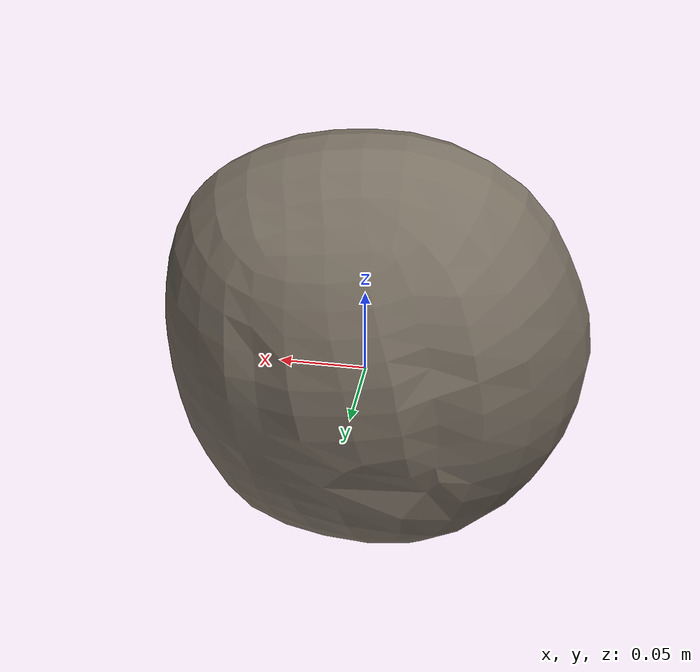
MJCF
<mujoco model="Bread_23">
  <compiler autolimits="true" boundmass="0.01" angle="radian"/>
  <default>
    <default class="/">
      <default class="__VISUAL_MJT__">
        <geom contype="0" conaffinity="0" group="0"/>
      </default>
      <default class="__STRUCTURAL_MJT__">
        <geom contype="8" conaffinity="15" group="4" friction="0.90000000000000002 0.90000000000000002 0.001" solref="0.025000000000000001 1" solimp="0.998 0.998 0.001"/>
      </default>
      <default class="__DYNAMIC_MJT__">
        <geom contype="1" conaffinity="15" group="4" friction="0.90000000000000002 0.90000000000000002 0.001" solref="0.025000000000000001 1" solimp="0.998 0.998 0.001"/>
      </default>
    </default>
  </default>
  <asset>
    <texture name="HoneyBread_Mat2" type="2d" file="HoneyBread_AlbedoTransparency.png"/>
    <material name="material_HoneyBread_Mat2" class="/" texture="HoneyBread_Mat2" specular="0.5" shininess="0.5" rgba="0.6323529 0.60631489999999999 0.56725780000000003 1"/>
    <mesh name="Bread_23_honeybread_b_mesh" class="/" file="Bread_23_honeybread_b_mesh/Bread_23_honeybread_b_mesh.obj" scale="1 1 1"/>
  </asset>
  <worldbody>
    <body name="Bread_23">
      <joint name="Bread_23_free" class="/" type="free" pos="0 0 0" axis="0 0 1" stiffness="0" range="0 0" armature="0" damping="0.10000000000000001" frictionloss="0"/>
      <body name="Bread_23_honeybread_b_mesh" pos="0.00125 -0.017090000000000001 -0.0027499999999999998" quat="1 0 0 0">
        <geom name="Bread_23_honeybread_b_mesh" class="__VISUAL_MJT__" type="mesh" material="material_HoneyBread_Mat2" shellinertia="false" mesh="Bread_23_honeybread_b_mesh"/>
        <geom name="Bread_23_PrimitiveCollider_0" class="__DYNAMIC_MJT__" type="box" size="0.058332446962594986 0.034990705549716949 0.13340124487876892" rgba="0 1 0 1" pos="0.001247406005859375 -0.014028467237949371 0.0027523040771484375" quat="1 0 0 0"/>
        <geom name="Bread_23_PrimitiveCollider_1" class="__DYNAMIC_MJT__" type="box" size="0.046462442725896835 0.016322525218129158 0.11961799114942551" rgba="0 1 0 1" pos="0.00030518000130541623 0.037200301885604858 0.0027523040771484375" quat="1 0 0 0"/>
        <geom name="Bread_23_PrimitiveCollider_2" class="__DYNAMIC_MJT__" type="box" size="0.03542771190404892 0.014695323072373867 0.07728363573551178" rgba="0 1 0 1" pos="0.00030518000130541623 0.068497031927108765 0.0027523040771484375" quat="1 0 0 0"/>
        <geom name="Bread_23_PrimitiveCollider_3" class="__DYNAMIC_MJT__" type="box" size="0.058332446962594986 0.034990705549716949 0.13340157270431519" rgba="0 1 0 1" pos="0.001247406005859375 -0.014028467237949371 0.0027523040771484375" quat="0.70710784196853638 0 0.70710575580596924 0"/>
        <geom name="Bread_23_PrimitiveCollider_4" class="__DYNAMIC_MJT__" type="box" size="0.046461828052997589 0.016322525218129158 0.11961828917264938" rgba="0 1 0 1" pos="0.001247406005859375 0.037200301885604858 0.0018101000459864736" quat="0.70710784196853638 0 0.70710575580596924 0"/>
        <geom name="Bread_23_PrimitiveCollider_5" class="__DYNAMIC_MJT__" type="box" size="0.03542771190404892 0.014695323072373867 0.077285505831241608" rgba="0 1 0 1" pos="0.001247406005859375 0.068497031927108765 0.0018101000459864736" quat="0.70710784196853638 0 0.70710575580596924 0"/>
        <geom name="Bread_23_PrimitiveCollider_6" class="__DYNAMIC_MJT__" type="box" size="0.058332446962594986 0.034990705549716949 0.13340124487876892" rgba="0 1 0 1" pos="0.001247406005859375 -0.014028467237949371 0.0027523040771484375" quat="0.92387980222702026 0 0.38268274068832397 0"/>
        <geom name="Bread_23_PrimitiveCollider_7" class="__DYNAMIC_MJT__" type="box" size="0.046461824327707291 0.016322525218129158 0.11961799114942551" rgba="0 1 0 1" pos="0.00058173999423161149 0.037200301885604858 0.0020866000559180975" quat="0.92387980222702026 0 0.38268274068832397 0"/>
        <geom name="Bread_23_PrimitiveCollider_8" class="__DYNAMIC_MJT__" type="box" size="0.035427708178758621 0.014695323072373867 0.07728363573551178" rgba="0 1 0 1" pos="0.00058173999423161149 0.068497031927108765 0.0020866000559180975" quat="0.92387980222702026 0 0.38268274068832397 0"/>
        <geom name="Bread_23_PrimitiveCollider_9" class="__DYNAMIC_MJT__" type="box" size="0.058332443237304688 0.034990705549716949 0.13340157270431519" rgba="0 1 0 1" pos="0.001247406005859375 -0.014028467237949371 0.0027523040771484375" quat="0.38268548250198364 0 0.92387866973876953 0"/>
        <geom name="Bread_23_PrimitiveCollider_10" class="__DYNAMIC_MJT__" type="box" size="0.046461820602416992 0.016322525218129158 0.11961828917264938" rgba="0 1 0 1" pos="0.0019131000153720379 0.037200301885604858 0.0020866000559180975" quat="0.38268548250198364 0 0.92387866973876953 0"/>
        <geom name="Bread_23_PrimitiveCollider_11" class="__DYNAMIC_MJT__" type="box" size="0.03542771190404892 0.014695323072373867 0.077285505831241608" rgba="0 1 0 1" pos="0.0019134000176563859 0.068497031927108765 0.0020866000559180975" quat="0.38268548250198364 0 0.92387866973876953 0"/>
      </body>
    </body>
  </worldbody>
</mujoco>
